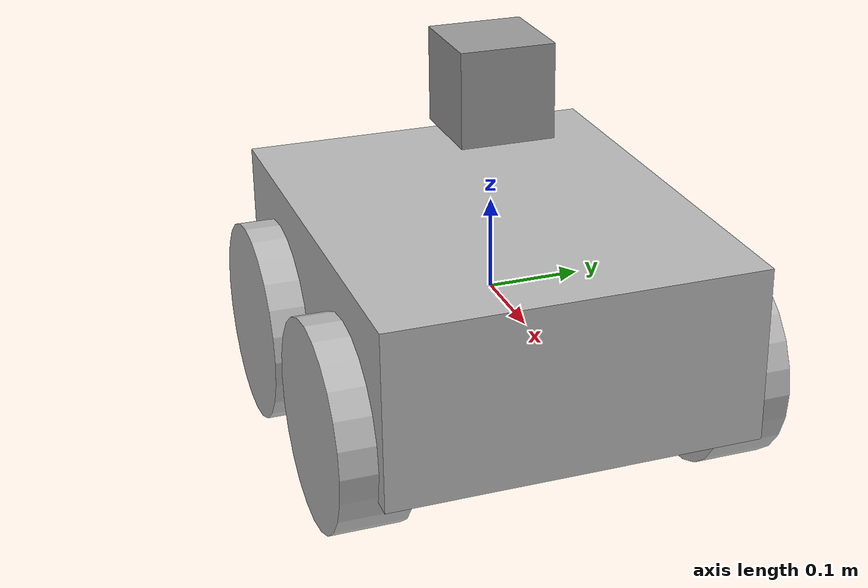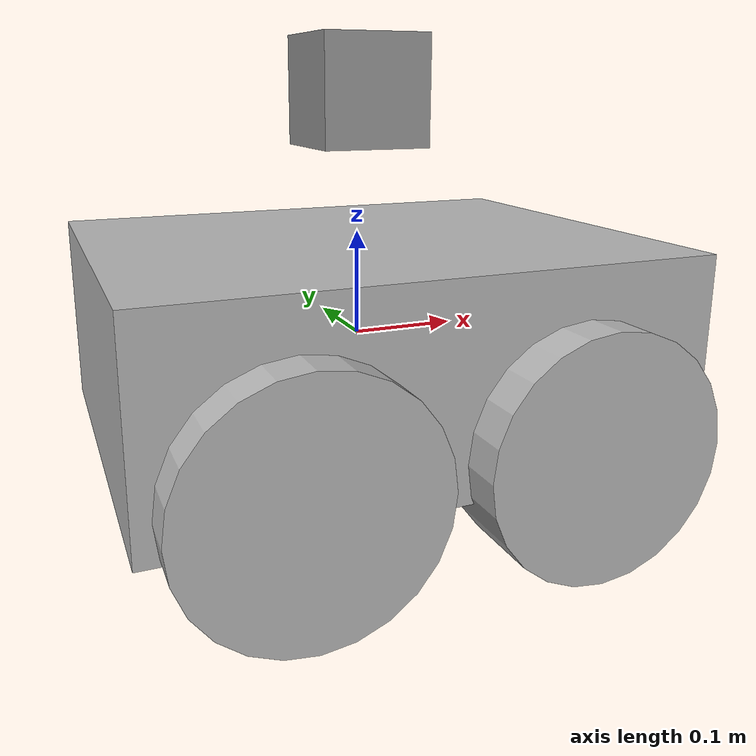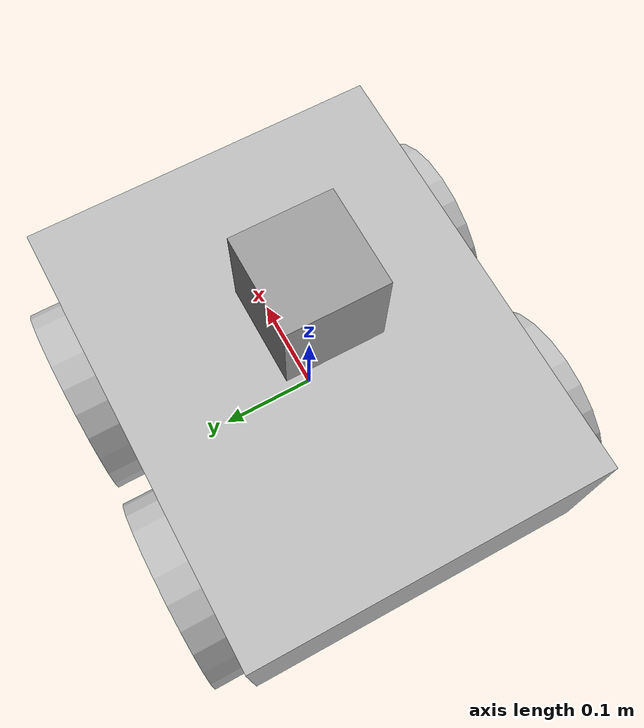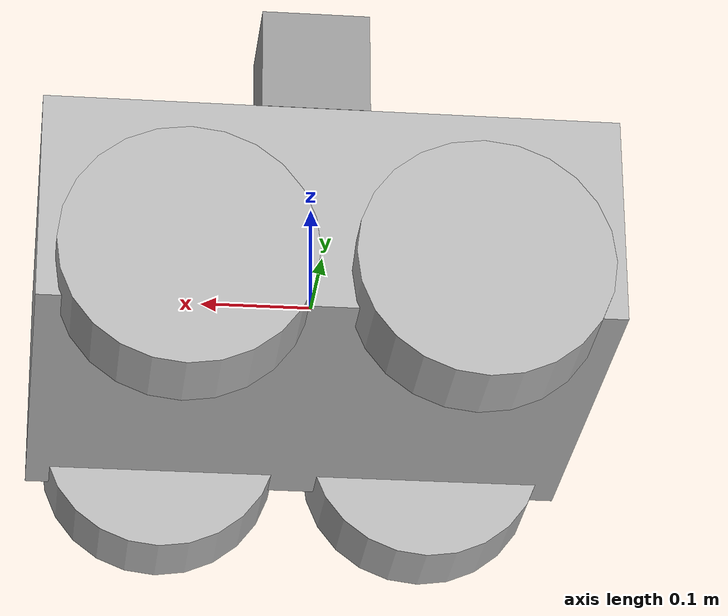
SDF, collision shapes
<?xml version='1.0'?>
<sdf version='1.6'>
  <model name='pioneer3at-v1'>
    <link name='chassis'>
      <pose frame=''>0 0 0 0 -0 0</pose>
      <inertial>
        <mass>14</mass>
        <inertia>
          <ixx>0.3338</ixx>
          <ixy>0</ixy>
          <ixz>0</ixz>
          <iyy>0.4783</iyy>
          <iyz>0</iyz>
          <izz>0.3338</izz>
        </inertia>
        <pose frame=''>0 0 0 0 -0 0</pose>
      </inertial>
      <self_collide>0</self_collide>
      <kinematic>0</kinematic>
      <gravity>1</gravity>
      <visual name='visual'>
        <geometry>
          <mesh>
            <uri>model://pioneer3at/meshes/chassis.dae</uri>
          </mesh>
        </geometry>
        <pose frame=''>0 0 0 0 -0 0</pose>
        <cast_shadows>1</cast_shadows>
        <transparency>0</transparency>
        <material>
          <shader type='vertex'>
            <normal_map>__default__</normal_map>
          </shader>
          <emissive>0 0 0 1</emissive>
        </material>
      </visual>
      <collision name='collision'>
        <laser_retro>0</laser_retro>
        <max_contacts>10</max_contacts>
        <pose frame=''>0 0 0 0 -0 0</pose>
        <geometry>
          <box>
            <size>0.501 0.4 0.19</size>
          </box>
        </geometry>
        <surface>
          <friction>
            <ode>
              <mu>1</mu>
              <mu2>1</mu2>
              <fdir1>0 0 0</fdir1>
              <slip1>0</slip1>
              <slip2>0</slip2>
            </ode>
            <torsional>
              <coefficient>1</coefficient>
              <patch_radius>0</patch_radius>
              <surface_radius>0</surface_radius>
              <use_patch_radius>1</use_patch_radius>
              <ode>
                <slip>0</slip>
              </ode>
            </torsional>
          </friction>
          <bounce>
            <restitution_coefficient>0</restitution_coefficient>
            <threshold>1e+06</threshold>
          </bounce>
          <contact>
            <collide_without_contact>0</collide_without_contact>
            <collide_without_contact_bitmask>1</collide_without_contact_bitmask>
            <collide_bitmask>1</collide_bitmask>
            <ode>
              <soft_cfm>0</soft_cfm>
              <soft_erp>0.2</soft_erp>
              <kp>1e+13</kp>
              <kd>1</kd>
              <max_vel>0.01</max_vel>
              <min_depth>0</min_depth>
            </ode>
            <bullet>
              <split_impulse>1</split_impulse>
              <split_impulse_penetration_threshold>-0.01</split_impulse_penetration_threshold>
              <soft_cfm>0</soft_cfm>
              <soft_erp>0.2</soft_erp>
              <kp>1e+13</kp>
              <kd>1</kd>
            </bullet>
          </contact>
        </surface>
      </collision>
    </link>
    <link name='left_front_wheel'>
      <pose frame=''>0.125 0.201 -0.06 1.5707 -0 0</pose>
      <inertial>
        <inertia>
          <ixx>1</ixx>
          <ixy>0</ixy>
          <ixz>0</ixz>
          <iyy>1</iyy>
          <iyz>0</iyz>
          <izz>1</izz>
        </inertia>
        <mass>1</mass>
      </inertial>
      <self_collide>0</self_collide>
      <kinematic>0</kinematic>
      <visual name='visual'>
        <geometry>
          <mesh>
            <uri>model://pioneer3at/meshes/wheel.dae</uri>
          </mesh>
        </geometry>
        <pose frame=''>0 0 0 0 -0 0</pose>
        <cast_shadows>1</cast_shadows>
        <transparency>0</transparency>
      </visual>
      <collision name='collision'>
        <laser_retro>0</laser_retro>
        <max_contacts>10</max_contacts>
        <pose frame=''>0 0 0 0 -0 0</pose>
        <geometry>
          <cylinder>
            <radius>0.11</radius>
            <length>0.075</length>
          </cylinder>
        </geometry>
        <surface>
          <friction>
            <ode>
              <mu>1</mu>
              <mu2>1</mu2>
              <fdir1>0 0 0</fdir1>
              <slip1>0.5</slip1>
              <slip2>0</slip2>
            </ode>
            <torsional>
              <coefficient>1</coefficient>
              <patch_radius>0</patch_radius>
              <surface_radius>0</surface_radius>
              <use_patch_radius>1</use_patch_radius>
              <ode>
                <slip>0</slip>
              </ode>
            </torsional>
          </friction>
          <bounce>
            <restitution_coefficient>0</restitution_coefficient>
            <threshold>1e+06</threshold>
          </bounce>
          <contact>
            <collide_without_contact>0</collide_without_contact>
            <collide_without_contact_bitmask>1</collide_without_contact_bitmask>
            <collide_bitmask>1</collide_bitmask>
            <ode>
              <soft_cfm>0</soft_cfm>
              <soft_erp>0.2</soft_erp>
              <kp>1e+13</kp>
              <kd>1</kd>
              <max_vel>0.01</max_vel>
              <min_depth>0</min_depth>
            </ode>
            <bullet>
              <split_impulse>1</split_impulse>
              <split_impulse_penetration_threshold>-0.01</split_impulse_penetration_threshold>
              <soft_cfm>0</soft_cfm>
              <soft_erp>0.2</soft_erp>
              <kp>1e+13</kp>
              <kd>1</kd>
            </bullet>
          </contact>
        </surface>
      </collision>
    </link>
    <link name='left_rear_wheel'>
      <pose frame=''>-0.125 0.201 -0.06 1.5707 -0 0</pose>
      <inertial>
        <inertia>
          <ixx>1</ixx>
          <ixy>0</ixy>
          <ixz>0</ixz>
          <iyy>1</iyy>
          <iyz>0</iyz>
          <izz>1</izz>
        </inertia>
        <mass>1</mass>
      </inertial>
      <self_collide>0</self_collide>
      <kinematic>0</kinematic>
      <visual name='visual'>
        <geometry>
          <mesh>
            <uri>model://pioneer3at/meshes/wheel.dae</uri>
          </mesh>
        </geometry>
        <pose frame=''>0 0 0 0 -0 0</pose>
        <cast_shadows>1</cast_shadows>
        <transparency>0</transparency>
      </visual>
      <collision name='collision'>
        <laser_retro>0</laser_retro>
        <max_contacts>10</max_contacts>
        <pose frame=''>0 0 0 0 -0 0</pose>
        <geometry>
          <cylinder>
            <radius>0.11</radius>
            <length>0.075</length>
          </cylinder>
        </geometry>
        <surface>
          <friction>
            <ode>
              <mu>1</mu>
              <mu2>1</mu2>
              <fdir1>0 0 0</fdir1>
              <slip1>0.5</slip1>
              <slip2>0</slip2>
            </ode>
            <torsional>
              <coefficient>1</coefficient>
              <patch_radius>0</patch_radius>
              <surface_radius>0</surface_radius>
              <use_patch_radius>1</use_patch_radius>
              <ode>
                <slip>0</slip>
              </ode>
            </torsional>
          </friction>
          <bounce>
            <restitution_coefficient>0</restitution_coefficient>
            <threshold>1e+06</threshold>
          </bounce>
          <contact>
            <collide_without_contact>0</collide_without_contact>
            <collide_without_contact_bitmask>1</collide_without_contact_bitmask>
            <collide_bitmask>1</collide_bitmask>
            <ode>
              <soft_cfm>0</soft_cfm>
              <soft_erp>0.2</soft_erp>
              <kp>1e+13</kp>
              <kd>1</kd>
              <max_vel>0.01</max_vel>
              <min_depth>0</min_depth>
            </ode>
            <bullet>
              <split_impulse>1</split_impulse>
              <split_impulse_penetration_threshold>-0.01</split_impulse_penetration_threshold>
              <soft_cfm>0</soft_cfm>
              <soft_erp>0.2</soft_erp>
              <kp>1e+13</kp>
              <kd>1</kd>
            </bullet>
          </contact>
        </surface>
      </collision>
    </link>
    <link name='link_3'>
      <pose frame=''>0 0 0.23 0 1e-06 0.000218</pose>
      <inertial>
        <mass>1</mass>
        <inertia>
          <ixx>0.166667</ixx>
          <ixy>0</ixy>
          <ixz>0</ixz>
          <iyy>0.166667</iyy>
          <iyz>0</iyz>
          <izz>0.166667</izz>
        </inertia>
        <pose frame=''>0 0 0 0 -0 0</pose>
      </inertial>
      <gravity>1</gravity>
      <self_collide>0</self_collide>
      <kinematic>0</kinematic>
      <visual name='visual'>
        <pose frame=''>0 0 0 0 -0 0</pose>
        <geometry>
          <box>
            <size>0.1 0.1 0.1</size>
          </box>
        </geometry>
        <material>
          <lighting>1</lighting>
          <script>
            <uri>file://media/materials/scripts/gazebo.material</uri>
            <name>Gazebo/Grey</name>
          </script>
          <ambient>0.3 0.3 0.3 1</ambient>
          <diffuse>0.7 0.7 0.7 1</diffuse>
          <specular>0.01 0.01 0.01 1</specular>
          <emissive>0 0 0 1</emissive>
          <shader type='vertex'>
            <normal_map>__default__</normal_map>
          </shader>
        </material>
        <transparency>0</transparency>
        <cast_shadows>1</cast_shadows>
      </visual>
      <collision name='collision'>
        <laser_retro>0</laser_retro>
        <max_contacts>10</max_contacts>
        <pose frame=''>0 0 0 0 -0 0</pose>
        <geometry>
          <box>
            <size>0.1 0.1 0.1</size>
          </box>
        </geometry>
        <surface>
          <friction>
            <ode>
              <mu>1</mu>
              <mu2>1</mu2>
              <fdir1>0 0 0</fdir1>
              <slip1>0</slip1>
              <slip2>0</slip2>
            </ode>
            <torsional>
              <coefficient>1</coefficient>
              <patch_radius>0</patch_radius>
              <surface_radius>0</surface_radius>
              <use_patch_radius>1</use_patch_radius>
              <ode>
                <slip>0</slip>
              </ode>
            </torsional>
          </friction>
          <bounce>
            <restitution_coefficient>0</restitution_coefficient>
            <threshold>1e+06</threshold>
          </bounce>
          <contact>
            <collide_without_contact>0</collide_without_contact>
            <collide_without_contact_bitmask>1</collide_without_contact_bitmask>
            <collide_bitmask>1</collide_bitmask>
            <ode>
              <soft_cfm>0</soft_cfm>
              <soft_erp>0.2</soft_erp>
              <kp>1e+13</kp>
              <kd>1</kd>
              <max_vel>0.01</max_vel>
              <min_depth>0</min_depth>
            </ode>
            <bullet>
              <split_impulse>1</split_impulse>
              <split_impulse_penetration_threshold>-0.01</split_impulse_penetration_threshold>
              <soft_cfm>0</soft_cfm>
              <soft_erp>0.2</soft_erp>
              <kp>1e+13</kp>
              <kd>1</kd>
            </bullet>
          </contact>
        </surface>
      </collision>
    </link>
    <link name='right_front_wheel'>
      <pose frame=''>0.125 -0.201 -0.06 1.5707 -0 0</pose>
      <inertial>
        <inertia>
          <ixx>1</ixx>
          <ixy>0</ixy>
          <ixz>0</ixz>
          <iyy>1</iyy>
          <iyz>0</iyz>
          <izz>1</izz>
        </inertia>
        <mass>1</mass>
        <pose frame=''>0 0 0 0 -0 0</pose>
      </inertial>
      <self_collide>0</self_collide>
      <kinematic>0</kinematic>
      <gravity>1</gravity>
      <visual name='visual'>
        <geometry>
          <mesh>
            <uri>model://pioneer3at/meshes/wheel.dae</uri>
          </mesh>
        </geometry>
        <pose frame=''>0 0 0 0 -0 0</pose>
        <cast_shadows>1</cast_shadows>
        <transparency>0</transparency>
        <material>
          <shader type='vertex'>
            <normal_map>__default__</normal_map>
          </shader>
        </material>
      </visual>
      <collision name='collision'>
        <laser_retro>0</laser_retro>
        <max_contacts>10</max_contacts>
        <pose frame=''>0 0 0 0 -0 0</pose>
        <geometry>
          <cylinder>
            <radius>0.11</radius>
            <length>0.075</length>
          </cylinder>
        </geometry>
        <surface>
          <friction>
            <ode>
              <mu>1</mu>
              <mu2>1</mu2>
              <fdir1>0 0 0</fdir1>
              <slip1>0.5</slip1>
              <slip2>0</slip2>
            </ode>
            <torsional>
              <coefficient>1</coefficient>
              <patch_radius>0</patch_radius>
              <surface_radius>0</surface_radius>
              <use_patch_radius>1</use_patch_radius>
              <ode>
                <slip>0</slip>
              </ode>
            </torsional>
          </friction>
          <bounce>
            <restitution_coefficient>0</restitution_coefficient>
            <threshold>1e+06</threshold>
          </bounce>
          <contact>
            <collide_without_contact>0</collide_without_contact>
            <collide_without_contact_bitmask>1</collide_without_contact_bitmask>
            <collide_bitmask>1</collide_bitmask>
            <ode>
              <soft_cfm>0</soft_cfm>
              <soft_erp>0.2</soft_erp>
              <kp>1e+13</kp>
              <kd>1</kd>
              <max_vel>0.01</max_vel>
              <min_depth>0</min_depth>
            </ode>
            <bullet>
              <split_impulse>1</split_impulse>
              <split_impulse_penetration_threshold>-0.01</split_impulse_penetration_threshold>
              <soft_cfm>0</soft_cfm>
              <soft_erp>0.2</soft_erp>
              <kp>1e+13</kp>
              <kd>1</kd>
            </bullet>
          </contact>
        </surface>
      </collision>
    </link>
    <link name='right_rear_wheel'>
      <pose frame=''>-0.125 -0.201 -0.06 1.5707 -0 0</pose>
      <inertial>
        <inertia>
          <ixx>1</ixx>
          <ixy>0</ixy>
          <ixz>0</ixz>
          <iyy>1</iyy>
          <iyz>0</iyz>
          <izz>1</izz>
        </inertia>
        <mass>1</mass>
      </inertial>
      <self_collide>0</self_collide>
      <kinematic>0</kinematic>
      <visual name='visual'>
        <geometry>
          <mesh>
            <uri>model://pioneer3at/meshes/wheel.dae</uri>
          </mesh>
        </geometry>
        <pose frame=''>0 0 0 0 -0 0</pose>
        <cast_shadows>1</cast_shadows>
        <transparency>0</transparency>
      </visual>
      <collision name='collision'>
        <laser_retro>0</laser_retro>
        <max_contacts>10</max_contacts>
        <pose frame=''>0 0 0 0 -0 0</pose>
        <geometry>
          <cylinder>
            <radius>0.11</radius>
            <length>0.075</length>
          </cylinder>
        </geometry>
        <surface>
          <friction>
            <ode>
              <mu>1</mu>
              <mu2>1</mu2>
              <fdir1>0 0 0</fdir1>
              <slip1>0.5</slip1>
              <slip2>0</slip2>
            </ode>
            <torsional>
              <coefficient>1</coefficient>
              <patch_radius>0</patch_radius>
              <surface_radius>0</surface_radius>
              <use_patch_radius>1</use_patch_radius>
              <ode>
                <slip>0</slip>
              </ode>
            </torsional>
          </friction>
          <bounce>
            <restitution_coefficient>0</restitution_coefficient>
            <threshold>1e+06</threshold>
          </bounce>
          <contact>
            <collide_without_contact>0</collide_without_contact>
            <collide_without_contact_bitmask>1</collide_without_contact_bitmask>
            <collide_bitmask>1</collide_bitmask>
            <ode>
              <soft_cfm>0</soft_cfm>
              <soft_erp>0.2</soft_erp>
              <kp>1e+13</kp>
              <kd>1</kd>
              <max_vel>0.01</max_vel>
              <min_depth>0</min_depth>
            </ode>
            <bullet>
              <split_impulse>1</split_impulse>
              <split_impulse_penetration_threshold>-0.01</split_impulse_penetration_threshold>
              <soft_cfm>0</soft_cfm>
              <soft_erp>0.2</soft_erp>
              <kp>1e+13</kp>
              <kd>1</kd>
            </bullet>
          </contact>
        </surface>
      </collision>
    </link>
    <joint name='chassis_JOINT_0' type='fixed'>
      <parent>chassis</parent>
      <child>link_3</child>
      <pose frame=''>0 0 0 0 -0 0</pose>
      <physics>
        <ode>
          <limit>
            <cfm>0</cfm>
            <erp>0.2</erp>
          </limit>
          <suspension>
            <cfm>0</cfm>
            <erp>0.2</erp>
          </suspension>
        </ode>
      </physics>
    </joint>
    <joint name='left_front' type='revolute'>
      <parent>chassis</parent>
      <child>left_front_wheel</child>
      <pose frame=''>0 0 0 0 -0 0</pose>
      <axis>
        <xyz>0 1 0</xyz>
        <use_parent_model_frame>1</use_parent_model_frame>
        <limit>
          <lower>-1e+16</lower>
          <upper>1e+16</upper>
          <effort>-1</effort>
          <velocity>-1</velocity>
        </limit>
        <dynamics>
          <spring_reference>0</spring_reference>
          <spring_stiffness>0</spring_stiffness>
          <damping>0</damping>
          <friction>0</friction>
        </dynamics>
      </axis>
      <physics>
        <ode>
          <limit>
            <cfm>0</cfm>
            <erp>0.2</erp>
          </limit>
          <suspension>
            <cfm>0</cfm>
            <erp>0.2</erp>
          </suspension>
        </ode>
      </physics>
    </joint>
    <joint name='left_rear' type='revolute'>
      <parent>chassis</parent>
      <child>left_rear_wheel</child>
      <pose frame=''>0 0 0 0 -0 0</pose>
      <axis>
        <xyz>0 1 0</xyz>
        <use_parent_model_frame>1</use_parent_model_frame>
        <limit>
          <lower>-1e+16</lower>
          <upper>1e+16</upper>
          <effort>-1</effort>
          <velocity>-1</velocity>
        </limit>
        <dynamics>
          <spring_reference>0</spring_reference>
          <spring_stiffness>0</spring_stiffness>
          <damping>0</damping>
          <friction>0</friction>
        </dynamics>
      </axis>
      <physics>
        <ode>
          <limit>
            <cfm>0</cfm>
            <erp>0.2</erp>
          </limit>
          <suspension>
            <cfm>0</cfm>
            <erp>0.2</erp>
          </suspension>
        </ode>
      </physics>
    </joint>
    <joint name='right_front' type='revolute'>
      <parent>chassis</parent>
      <child>right_front_wheel</child>
      <pose frame=''>0 0 0 0 -0 0</pose>
      <axis>
        <xyz>0 1 0</xyz>
        <use_parent_model_frame>1</use_parent_model_frame>
        <limit>
          <lower>-1e+16</lower>
          <upper>1e+16</upper>
          <effort>-1</effort>
          <velocity>-1</velocity>
        </limit>
        <dynamics>
          <spring_reference>0</spring_reference>
          <spring_stiffness>0</spring_stiffness>
          <damping>0</damping>
          <friction>0</friction>
        </dynamics>
      </axis>
      <physics>
        <ode>
          <limit>
            <cfm>0</cfm>
            <erp>0.2</erp>
          </limit>
          <suspension>
            <cfm>0</cfm>
            <erp>0.2</erp>
          </suspension>
        </ode>
      </physics>
    </joint>
    <joint name='right_rear' type='revolute'>
      <parent>chassis</parent>
      <child>right_rear_wheel</child>
      <pose frame=''>0 0 0 0 -0 0</pose>
      <axis>
        <xyz>0 1 0</xyz>
        <use_parent_model_frame>1</use_parent_model_frame>
        <limit>
          <lower>-1e+16</lower>
          <upper>1e+16</upper>
          <effort>-1</effort>
          <velocity>-1</velocity>
        </limit>
        <dynamics>
          <spring_reference>0</spring_reference>
          <spring_stiffness>0</spring_stiffness>
          <damping>0</damping>
          <friction>0</friction>
        </dynamics>
      </axis>
      <physics>
        <ode>
          <limit>
            <cfm>0</cfm>
            <erp>0.2</erp>
          </limit>
          <suspension>
            <cfm>0</cfm>
            <erp>0.2</erp>
          </suspension>
        </ode>
      </physics>
    </joint>
    <static>0</static>
    <allow_auto_disable>1</allow_auto_disable>
    <plugin name='SkidSteerDrivePlugin' filename='libSkidSteerDrivePlugin.so'>
      <right_front>right_front</right_front>
      <right_rear>right_rear</right_rear>
      <left_front>left_front</left_front>
      <left_rear>left_rear</left_rear>
      <MaxForce>5.0</MaxForce>
    </plugin>
  </model>
</sdf>
